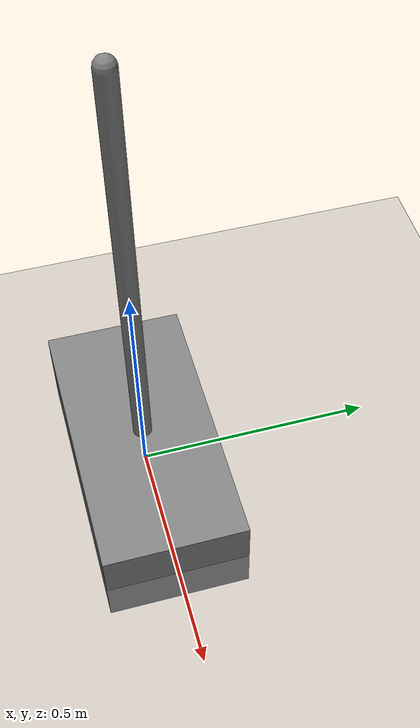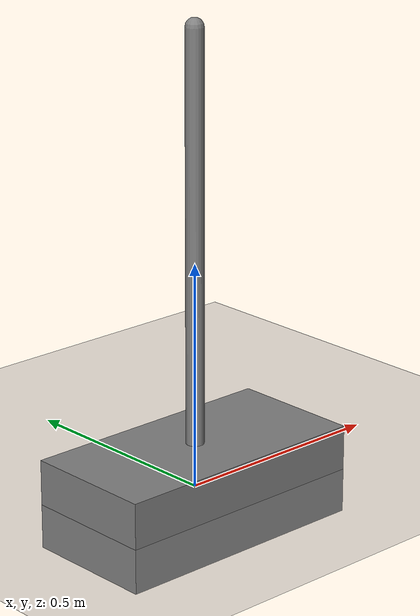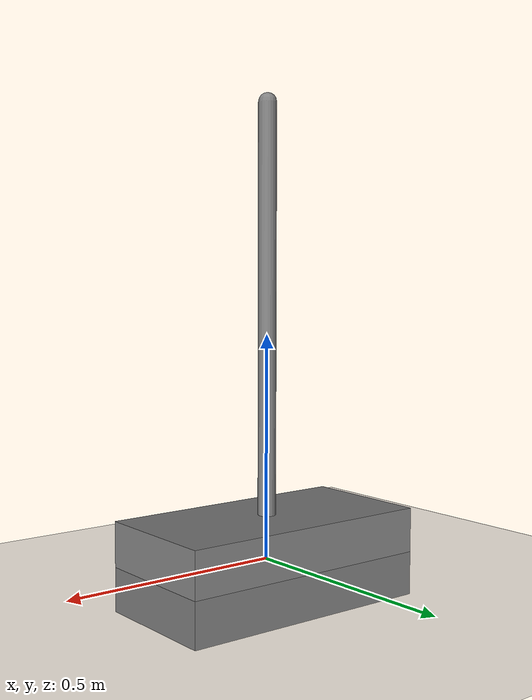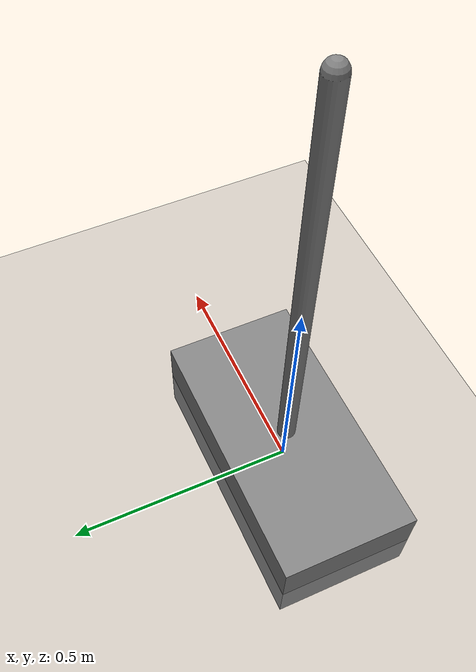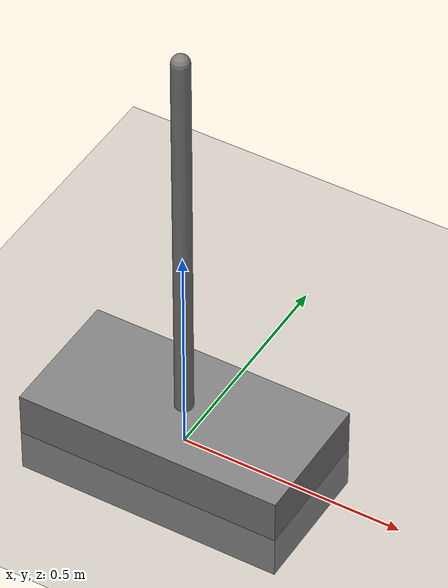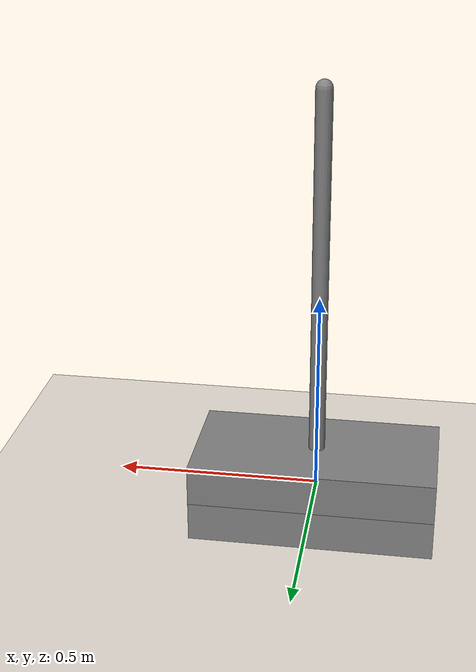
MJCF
<mujoco model="Cartpole">
  <compiler angle="radian" inertiafromgeom="true"/>

  <default>
    <joint armature="0" damping="0.1" frictionloss="0" type="hinge"/>
    <geom contype="0" conaffinity="0" density="1000"/>
  </default>

  <option timestep="0.02" integrator="Euler" solver="Newton" iterations="1"/>

  <worldbody>
    <!-- Ground plane -->
    <geom type="plane" size="5 5 0.1" contype="0" conaffinity="0"/>

    <!-- Cart -->
    <body name="cart" pos="0 0 0">
      <joint name="slider" type="slide" axis="1 0 0" range="-4.8 4.8"/>
      <geom type="box" size="0.3 0.15 0.1" mass="1.0"/>

      <!-- Pole -->
      <body name="pole" pos="0 0 0">
        <joint name="hinge" type="hinge" axis="0 1 0"/>
        <geom type="capsule" size="0.02 0.5" pos="0 0 0.5" mass="0.1"/>
      </body>
    </body>
  </worldbody>

  <actuator>
    <motor name="force_actuator" joint="slider" ctrlrange="-10 10"/>
  </actuator>
</mujoco>
